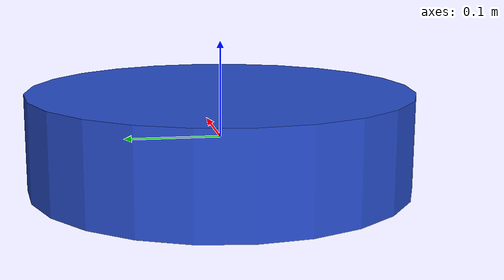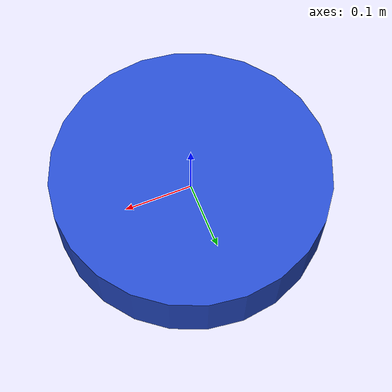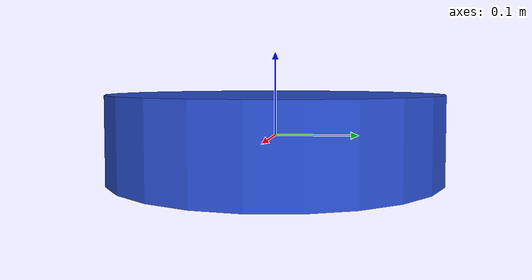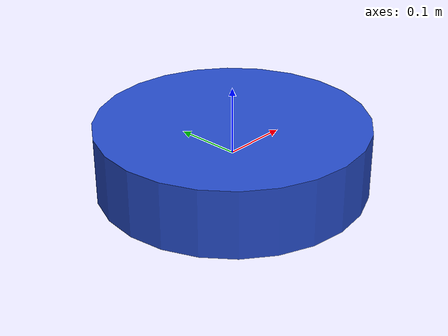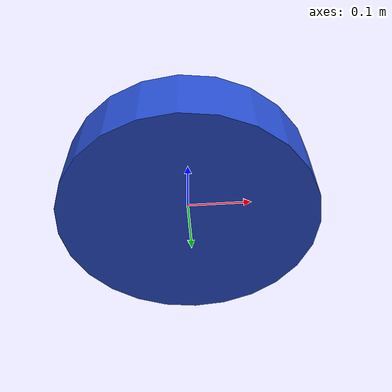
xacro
<?xml version="1.0"?>
<robot xmlns:xacro="http://www.ros.org/wiki/xacro" name="yaw_link">
<xacro:include filename="$(find sentry_laser_sim)/xacro_new/define_fun.xacro"/>
<xacro:property name="link_name" value="yaw_link"/>
<xacro:property name="link_height" value="0.1"/>
<xacro:property name="link_radius" value="0.2"/>

<!-- link在坐标系的位置 -->
<xacro:property name="pos_x" value="0"/>
<xacro:property name="pos_y" value="0"/>
<xacro:property name="pos_z" value="0"/>
<xacro:property name="ang_x" value="0"/>
<xacro:property name="ang_y" value="0"/>
<xacro:property name="ang_z" value="0"/>

<!-- link 颜色 -->
<xacro:property name="color" value="red"/>
<xacro:property name="color_r" value="255"/>
<xacro:property name="color_g" value="0"/>
<xacro:property name="color_b" value="0"/>
<xacro:property name="color_a" value="1"/>

<!-- link物理属性 -->
<xacro:property name="mass" value="3"/>
<xacro:property name="ixx" value="0.01"/>
<xacro:property name="ixy" value="0"/>
<xacro:property name="iyy" value="0.01"/>
<xacro:property name="iyz" value="0"/>
<xacro:property name="izz" value="0.01"/>
<xacro:property name="ixz" value="0"/>

<!--yaw_link-->

<xacro:mylink_cyl link_name="${link_name}" l="${link_height}" r_="${link_radius}" x="${pos_x}" y="${pos_y}" z="${pos_z}" wx="${ang_x}" wy="${ang_y}" wz="${ang_z}" color="${color}" r="${color_r}" g="${color_g}" b="${color_b}" a="${color_a}" mass="${mass}" ixx="${ixx}" ixy="${ixy}" ixz="${ixz}" iyy="${iyy}" iyz="${iyz}" izz="${izz}"/>

<gazebo reference="yaw_link">
        <material>Gazebo/Blue</material>
</gazebo>

</robot>

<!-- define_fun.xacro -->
<robot xmlns:xacro="http://www.ros.org/wiki/xacro" name="body_define">
<!-- 定义常量 -->
<xacro:property name="PI" value="3.1415926535"/>

<!-- 定义Link -->
    <!-- 定义矩形Link -->
    <xacro:macro name="mylink_tri" params="myname l w h x y z wx wy wz color r g b a mass ixx ixy ixz iyy iyz izz">
        <link name="${myname}">
        <visual>
            <geometry>
                <box size="${l} ${w} ${h}"/>
            </geometry>
            <origin xyz="${x} ${y} ${z}" rpy="${wx} ${wy} ${wz}"/>
            <meterial name="${color}">
                <color rgba="${r} ${g} ${b} ${a}"/>
            </meterial>
        </visual>
        <collision>
            <geometry>
                <box size="${l} ${w} ${h}"/>
            </geometry>
        </collision>
        <inertial>
            <mass value="${mass}"/>
            <inertia ixx="${ixx}" ixy="${ixy}" ixz="${ixz}" iyy="${iyy}" iyz="${iyz}" izz="${izz}"/>
        </inertial>
        </link>
    </xacro:macro>

    <!-- 定义圆柱link -->
    <xacro:macro name="mylink_cyl" params="link_name l r_ x y z wx wy wz color r g b a mass ixx ixy ixz iyy iyz izz">
        <link name="${link_name}">
            <visual>
                <geometry>
                    <cylinder length="${l}" radius="${r_}"/>
                </geometry>
                <origin xyz="${x} ${y} ${z}" rpy="${wx} ${wy} ${wz}"/>
                <meterial name="${color}">
                    <color rgba="${r} ${g} ${b} ${a}"/>
                </meterial>
            </visual>
            <collision>
                <geometry>
                    <cylinder length="${l}" radius="${r_}"/>
                </geometry>
            </collision>
            <inertial>
                <mass value="${mass}"/>
                <inertia ixx="${ixx}" ixy="${ixy}" ixz="${ixz}" iyy="${iyy}" iyz="${iyz}" izz="${izz}"/>
            </inertial>
        </link>
    </xacro:macro>

<!-- 定义关节 -->
    <!-- 定义fixed关节 -->
    <xacro:macro name="myjoint_fixed" params="joint_name joint_type x y z wx wz wy parent_link child_link">
        <joint name="${joint_name}" type="${joint_type}">
            <origin xyz="${x} ${y} ${z}" rpy="${wx} ${wy} ${wz}"/>
            <parent link="${parent_link}"/>
            <child link="${child_link}"/>
        </joint>
    </xacro:macro>
    <!-- 定义continuous关节 -->
    <xacro:macro name="myjoint_continuous" params="joint_name joint_type x y z wx wy wz parent_link child_link ax ay az">
	<joint name="${joint_name}" type="${joint_type}">
		<origin xyz="${x} ${y} ${z}" rpy="${wx} ${wy} ${wz}"/>
    		<parent link="${parent_link}" />
    		<child link="${child_link}" />
    		<axis xyz="${ax} ${ay} ${az}"/>
	</joint>
    </xacro:macro>

<!-- 传动实现:用于连接控制器与关节 -->
    <xacro:macro name="joint_trans" params="joint_name">
    <transmission name="trans_${joint_name}">
      <type>transmission_interface/SimpleTransmission</type>
      <actuator name="${joint_name}_actuator">
        <mechanicalReduction>1</mechanicalReduction>
      </actuator>
      <joint name="${joint_name}">
        <hardwareInterface>hardware_interface/EffortJointInterface</hardwareInterface>
      </joint>
    </transmission>
    </xacro:macro>

</robot>
